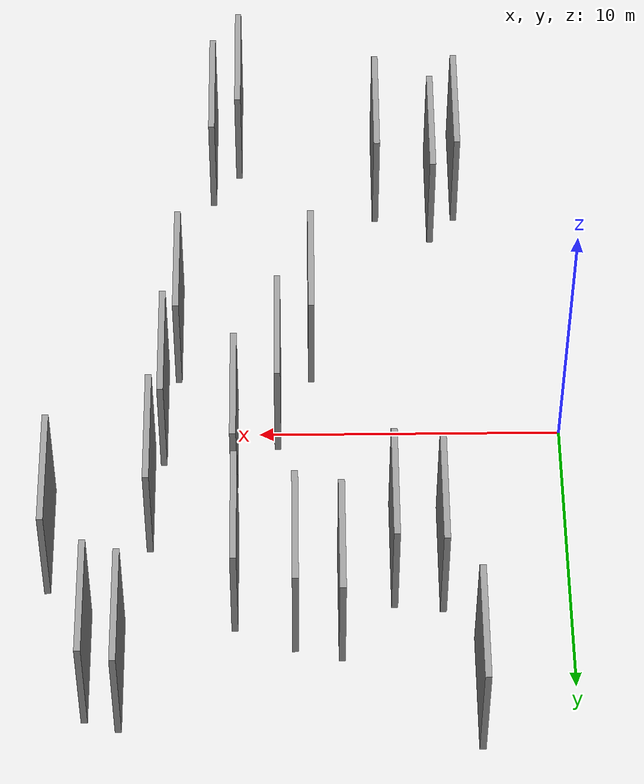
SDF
<sdf version="1.6">
 <world name="default">
  <scene>
   <sky><clouds><speed>12</speed></clouds></sky>
   <ambient>0.4 0.4 0.4 1</ambient>
   <background>0.7 0.7 0.7 1</background>
   <shadows>1</shadows>
  </scene>
  <gravity>0 0 -9.8066</gravity>
  <magnetic_field>6e-06 2.3e-05 -4.2e-05</magnetic_field>
  <physics default="0" name="default_physics" type="ode">
   <ode>
    <solver>
     <type>quick</type>
     <iters>10</iters>
     <sor>1.0</sor>
     <use_dynamic_moi_rescaling>0</use_dynamic_moi_rescaling>
    </solver>
    <constraints>
     <cfm>0</cfm>
     <erp>0.2</erp>
     <contact_max_correcting_vel>100</contact_max_correcting_vel>
     <contact_surface_layer>0.001</contact_surface_layer>
    </constraints>
   </ode>
   <max_step_size>0.004</max_step_size>
   <real_time_factor>1</real_time_factor>
   <real_time_update_rate>250</real_time_update_rate>
  </physics>
  <light name="sun" type="directional">
   <pose>0 0 10 0 0 0</pose>
   <diffuse>0.8 0.8 0.8 1</diffuse>
   <specular>0.2 0.2 0.2 1</specular>
   <attenuation>
    <range>1000</range>
    <constant>0.9</constant>
    <linear>0.01</linear>
    <quadratic>0.001</quadratic>
   </attenuation>
   <direction>-0.5 0.1 -0.9</direction>
  </light>
  <model name="grey_wall_1">
   <static>1</static>
   <pose>16.5848 6.0553 2.5 0.000000 0.000000 1.570796</pose>
   <link name="link">
    <pose>0 0 2.00 0 0 0</pose>
    <collision name="collision"><geometry><box><size>4.00 0.2 4.00</size></box></geometry></collision>
    <visual name="visual">
     <cast_shadows>0</cast_shadows>
     <geometry><box><size>4.00 0.2 4.00</size></box></geometry>
     <material>
      <script>
       <uri>model://grey_wall/materials/scripts</uri>
       <uri>model://grey_wall/materials/textures</uri>
       <name>vrc/grey_wall</name>
      </script>
     </material>
    </visual>
   </link>
  </model>
  <model name="grey_wall_2">
   <static>1</static>
   <pose>3.2176 11.8162 2.5 0.000000 0.000000 1.570796</pose>
   <link name="link">
    <pose>0 0 2.00 0 0 0</pose>
    <collision name="collision"><geometry><box><size>4.00 0.2 4.00</size></box></geometry></collision>
    <visual name="visual">
     <cast_shadows>0</cast_shadows>
     <geometry><box><size>4.00 0.2 4.00</size></box></geometry>
     <material>
      <script>
       <uri>model://grey_wall/materials/scripts</uri>
       <uri>model://grey_wall/materials/textures</uri>
       <name>vrc/grey_wall</name>
      </script>
     </material>
    </visual>
   </link>
  </model>
  <model name="grey_wall_3">
   <static>1</static>
   <pose>9.3807 0.4920 2.5 0.000000 0.000000 1.570796</pose>
   <link name="link">
    <pose>0 0 2.00 0 0 0</pose>
    <collision name="collision"><geometry><box><size>4.00 0.2 4.00</size></box></geometry></collision>
    <visual name="visual">
     <cast_shadows>0</cast_shadows>
     <geometry><box><size>4.00 0.2 4.00</size></box></geometry>
     <material>
      <script>
       <uri>model://grey_wall/materials/scripts</uri>
       <uri>model://grey_wall/materials/textures</uri>
       <name>vrc/grey_wall</name>
      </script>
     </material>
    </visual>
   </link>
  </model>
  <model name="grey_wall_4">
   <static>1</static>
   <pose>4.2445 6.8425 2.5 0.000000 0.000000 1.570796</pose>
   <link name="link">
    <pose>0 0 2.00 0 0 0</pose>
    <collision name="collision"><geometry><box><size>4.00 0.2 4.00</size></box></geometry></collision>
    <visual name="visual">
     <cast_shadows>0</cast_shadows>
     <geometry><box><size>4.00 0.2 4.00</size></box></geometry>
     <material>
      <script>
       <uri>model://grey_wall/materials/scripts</uri>
       <uri>model://grey_wall/materials/textures</uri>
       <name>vrc/grey_wall</name>
      </script>
     </material>
    </visual>
   </link>
  </model>
  <model name="grey_wall_5">
   <static>1</static>
   <pose>13.0477 1.0896 2.5 0.000000 0.000000 1.570796</pose>
   <link name="link">
    <pose>0 0 2.00 0 0 0</pose>
    <collision name="collision"><geometry><box><size>4.00 0.2 4.00</size></box></geometry></collision>
    <visual name="visual">
     <cast_shadows>0</cast_shadows>
     <geometry><box><size>4.00 0.2 4.00</size></box></geometry>
     <material>
      <script>
       <uri>model://grey_wall/materials/scripts</uri>
       <uri>model://grey_wall/materials/textures</uri>
       <name>vrc/grey_wall</name>
      </script>
     </material>
    </visual>
   </link>
  </model>
  <model name="grey_wall_6">
   <static>1</static>
   <pose>13.4179 4.4958 2.5 0.000000 0.000000 1.570796</pose>
   <link name="link">
    <pose>0 0 2.00 0 0 0</pose>
    <collision name="collision"><geometry><box><size>4.00 0.2 4.00</size></box></geometry></collision>
    <visual name="visual">
     <cast_shadows>0</cast_shadows>
     <geometry><box><size>4.00 0.2 4.00</size></box></geometry>
     <material>
      <script>
       <uri>model://grey_wall/materials/scripts</uri>
       <uri>model://grey_wall/materials/textures</uri>
       <name>vrc/grey_wall</name>
      </script>
     </material>
    </visual>
   </link>
  </model>
  <model name="grey_wall_7">
   <static>1</static>
   <pose>11.5581 -10.0238 2.5 0.000000 0.000000 1.570796</pose>
   <link name="link">
    <pose>0 0 2.00 0 0 0</pose>
    <collision name="collision"><geometry><box><size>4.00 0.2 4.00</size></box></geometry></collision>
    <visual name="visual">
     <cast_shadows>0</cast_shadows>
     <geometry><box><size>4.00 0.2 4.00</size></box></geometry>
     <material>
      <script>
       <uri>model://grey_wall/materials/scripts</uri>
       <uri>model://grey_wall/materials/textures</uri>
       <name>vrc/grey_wall</name>
      </script>
     </material>
    </visual>
   </link>
  </model>
  <model name="grey_wall_8">
   <static>1</static>
   <pose>8.2780 -2.2807 2.5 0.000000 0.000000 1.570796</pose>
   <link name="link">
    <pose>0 0 2.00 0 0 0</pose>
    <collision name="collision"><geometry><box><size>4.00 0.2 4.00</size></box></geometry></collision>
    <visual name="visual">
     <cast_shadows>0</cast_shadows>
     <geometry><box><size>4.00 0.2 4.00</size></box></geometry>
     <material>
      <script>
       <uri>model://grey_wall/materials/scripts</uri>
       <uri>model://grey_wall/materials/textures</uri>
       <name>vrc/grey_wall</name>
      </script>
     </material>
    </visual>
   </link>
  </model>
  <model name="grey_wall_9">
   <static>1</static>
   <pose>12.6233 -2.2796 2.5 0.000000 0.000000 1.570796</pose>
   <link name="link">
    <pose>0 0 2.00 0 0 0</pose>
    <collision name="collision"><geometry><box><size>4.00 0.2 4.00</size></box></geometry></collision>
    <visual name="visual">
     <cast_shadows>0</cast_shadows>
     <geometry><box><size>4.00 0.2 4.00</size></box></geometry>
     <material>
      <script>
       <uri>model://grey_wall/materials/scripts</uri>
       <uri>model://grey_wall/materials/textures</uri>
       <name>vrc/grey_wall</name>
      </script>
     </material>
    </visual>
   </link>
  </model>
  <model name="grey_wall_10">
   <static>1</static>
   <pose>10.7625 2.8384 2.5 0.000000 0.000000 1.570796</pose>
   <link name="link">
    <pose>0 0 2.00 0 0 0</pose>
    <collision name="collision"><geometry><box><size>4.00 0.2 4.00</size></box></geometry></collision>
    <visual name="visual">
     <cast_shadows>0</cast_shadows>
     <geometry><box><size>4.00 0.2 4.00</size></box></geometry>
     <material>
      <script>
       <uri>model://grey_wall/materials/scripts</uri>
       <uri>model://grey_wall/materials/textures</uri>
       <name>vrc/grey_wall</name>
      </script>
     </material>
    </visual>
   </link>
  </model>
  <model name="grey_wall_11">
   <static>1</static>
   <pose>8.8445 8.2771 2.5 0.000000 0.000000 1.570796</pose>
   <link name="link">
    <pose>0 0 2.00 0 0 0</pose>
    <collision name="collision"><geometry><box><size>4.00 0.2 4.00</size></box></geometry></collision>
    <visual name="visual">
     <cast_shadows>0</cast_shadows>
     <geometry><box><size>4.00 0.2 4.00</size></box></geometry>
     <material>
      <script>
       <uri>model://grey_wall/materials/scripts</uri>
       <uri>model://grey_wall/materials/textures</uri>
       <name>vrc/grey_wall</name>
      </script>
     </material>
    </visual>
   </link>
  </model>
  <model name="grey_wall_12">
   <static>1</static>
   <pose>10.7211 7.5156 2.5 0.000000 0.000000 1.570796</pose>
   <link name="link">
    <pose>0 0 2.00 0 0 0</pose>
    <collision name="collision"><geometry><box><size>4.00 0.2 4.00</size></box></geometry></collision>
    <visual name="visual">
     <cast_shadows>0</cast_shadows>
     <geometry><box><size>4.00 0.2 4.00</size></box></geometry>
     <material>
      <script>
       <uri>model://grey_wall/materials/scripts</uri>
       <uri>model://grey_wall/materials/textures</uri>
       <name>vrc/grey_wall</name>
      </script>
     </material>
    </visual>
   </link>
  </model>
  <model name="grey_wall_13">
   <static>1</static>
   <pose>7.4155 8.6247 2.5 0.000000 0.000000 1.570796</pose>
   <link name="link">
    <pose>0 0 2.00 0 0 0</pose>
    <collision name="collision"><geometry><box><size>4.00 0.2 4.00</size></box></geometry></collision>
    <visual name="visual">
     <cast_shadows>0</cast_shadows>
     <geometry><box><size>4.00 0.2 4.00</size></box></geometry>
     <material>
      <script>
       <uri>model://grey_wall/materials/scripts</uri>
       <uri>model://grey_wall/materials/textures</uri>
       <name>vrc/grey_wall</name>
      </script>
     </material>
    </visual>
   </link>
  </model>
  <model name="grey_wall_14">
   <static>1</static>
   <pose>6.0431 -9.2315 2.5 0.000000 0.000000 1.570796</pose>
   <link name="link">
    <pose>0 0 2.00 0 0 0</pose>
    <collision name="collision"><geometry><box><size>4.00 0.2 4.00</size></box></geometry></collision>
    <visual name="visual">
     <cast_shadows>0</cast_shadows>
     <geometry><box><size>4.00 0.2 4.00</size></box></geometry>
     <material>
      <script>
       <uri>model://grey_wall/materials/scripts</uri>
       <uri>model://grey_wall/materials/textures</uri>
       <name>vrc/grey_wall</name>
      </script>
     </material>
    </visual>
   </link>
  </model>
  <model name="grey_wall_15">
   <static>1</static>
   <pose>4.2022 -8.2888 2.5 0.000000 0.000000 1.570796</pose>
   <link name="link">
    <pose>0 0 2.00 0 0 0</pose>
    <collision name="collision"><geometry><box><size>4.00 0.2 4.00</size></box></geometry></collision>
    <visual name="visual">
     <cast_shadows>0</cast_shadows>
     <geometry><box><size>4.00 0.2 4.00</size></box></geometry>
     <material>
      <script>
       <uri>model://grey_wall/materials/scripts</uri>
       <uri>model://grey_wall/materials/textures</uri>
       <name>vrc/grey_wall</name>
      </script>
     </material>
    </visual>
   </link>
  </model>
  <model name="grey_wall_16">
   <static>1</static>
   <pose>14.2305 11.1473 2.5 0.000000 0.000000 1.570796</pose>
   <link name="link">
    <pose>0 0 2.00 0 0 0</pose>
    <collision name="collision"><geometry><box><size>4.00 0.2 4.00</size></box></geometry></collision>
    <visual name="visual">
     <cast_shadows>0</cast_shadows>
     <geometry><box><size>4.00 0.2 4.00</size></box></geometry>
     <material>
      <script>
       <uri>model://grey_wall/materials/scripts</uri>
       <uri>model://grey_wall/materials/textures</uri>
       <name>vrc/grey_wall</name>
      </script>
     </material>
    </visual>
   </link>
  </model>
  <model name="grey_wall_17">
   <static>1</static>
   <pose>5.7551 6.6732 2.5 0.000000 0.000000 1.570796</pose>
   <link name="link">
    <pose>0 0 2.00 0 0 0</pose>
    <collision name="collision"><geometry><box><size>4.00 0.2 4.00</size></box></geometry></collision>
    <visual name="visual">
     <cast_shadows>0</cast_shadows>
     <geometry><box><size>4.00 0.2 4.00</size></box></geometry>
     <material>
      <script>
       <uri>model://grey_wall/materials/scripts</uri>
       <uri>model://grey_wall/materials/textures</uri>
       <name>vrc/grey_wall</name>
      </script>
     </material>
    </visual>
   </link>
  </model>
  <model name="grey_wall_18">
   <static>1</static>
   <pose>3.3708 -9.2669 2.5 0.000000 0.000000 1.570796</pose>
   <link name="link">
    <pose>0 0 2.00 0 0 0</pose>
    <collision name="collision"><geometry><box><size>4.00 0.2 4.00</size></box></geometry></collision>
    <visual name="visual">
     <cast_shadows>0</cast_shadows>
     <geometry><box><size>4.00 0.2 4.00</size></box></geometry>
     <material>
      <script>
       <uri>model://grey_wall/materials/scripts</uri>
       <uri>model://grey_wall/materials/textures</uri>
       <name>vrc/grey_wall</name>
      </script>
     </material>
    </visual>
   </link>
  </model>
  <model name="grey_wall_19">
   <static>1</static>
   <pose>10.6959 -11.2518 2.5 0.000000 0.000000 1.570796</pose>
   <link name="link">
    <pose>0 0 2.00 0 0 0</pose>
    <collision name="collision"><geometry><box><size>4.00 0.2 4.00</size></box></geometry></collision>
    <visual name="visual">
     <cast_shadows>0</cast_shadows>
     <geometry><box><size>4.00 0.2 4.00</size></box></geometry>
     <material>
      <script>
       <uri>model://grey_wall/materials/scripts</uri>
       <uri>model://grey_wall/materials/textures</uri>
       <name>vrc/grey_wall</name>
      </script>
     </material>
    </visual>
   </link>
  </model>
  <model name="grey_wall_20">
   <static>1</static>
   <pose>15.2718 10.8051 2.5 0.000000 0.000000 1.570796</pose>
   <link name="link">
    <pose>0 0 2.00 0 0 0</pose>
    <collision name="collision"><geometry><box><size>4.00 0.2 4.00</size></box></geometry></collision>
    <visual name="visual">
     <cast_shadows>0</cast_shadows>
     <geometry><box><size>4.00 0.2 4.00</size></box></geometry>
     <material>
      <script>
       <uri>model://grey_wall/materials/scripts</uri>
       <uri>model://grey_wall/materials/textures</uri>
       <name>vrc/grey_wall</name>
      </script>
     </material>
    </visual>
   </link>
  </model>
 </world>
</sdf>
